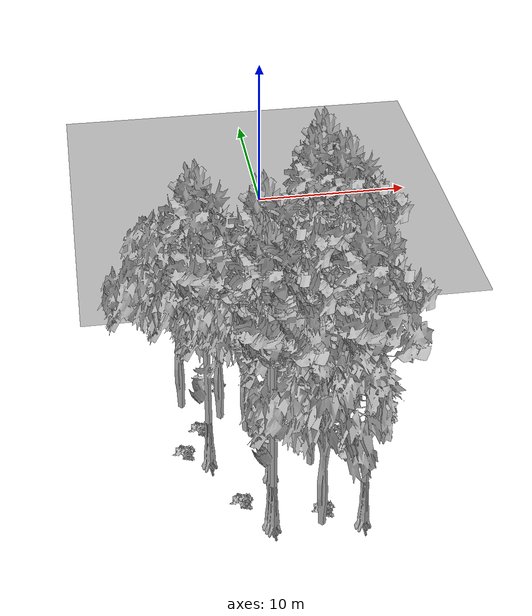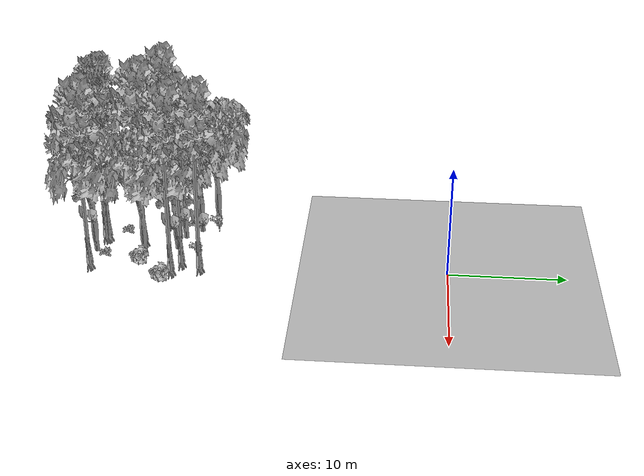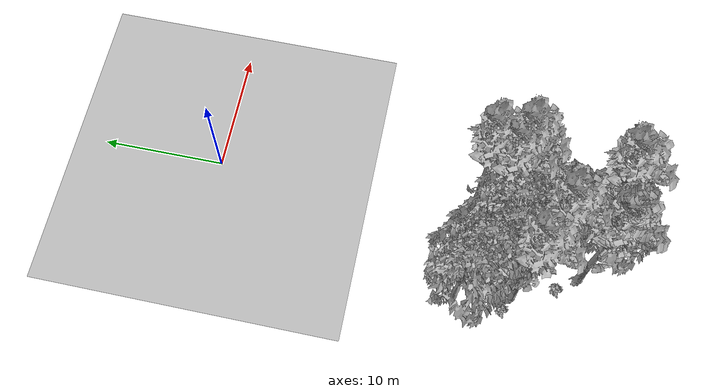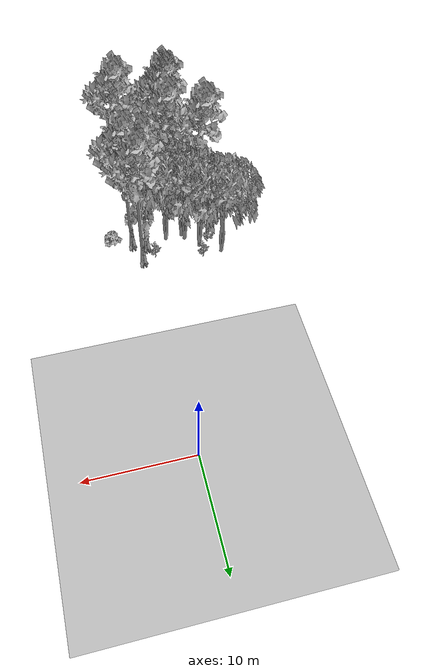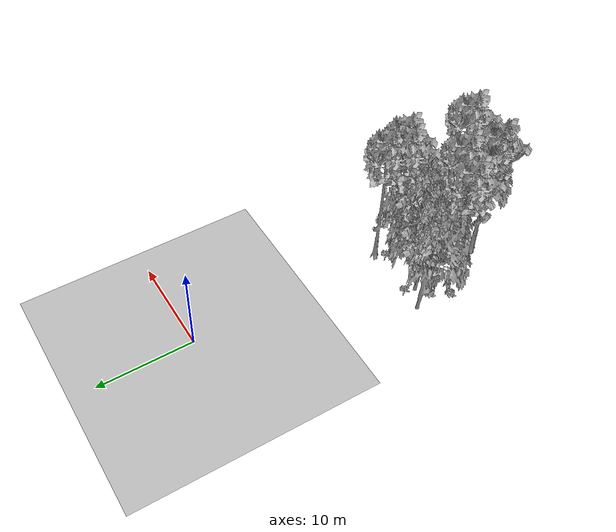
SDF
<sdf version="1.7">
 <world name="default">
  <model name="ground_plane">
   <static>1</static>
   <link name="link">
    <collision name="collision">
     <pose>-50 0 0 0 -0 0</pose>
     <geometry><plane><normal>0 0 1</normal><size>80 80</size></plane></geometry>
     <surface><contact><ode><min_depth>0.01</min_depth><max_vel>0</max_vel></ode></contact></surface>
    </collision>
    <visual name="grass">
     <cast_shadows>0</cast_shadows>
     <geometry>
      <mesh>
       <scale>0.46714285714285714 0.46714285714285714 0.1</scale>
       <uri>file://grass_plane/meshes/grass_plane.dae</uri>
      </mesh>
     </geometry>
    </visual>
   </link>
  </model>
  <model name="Tree 25">
   <static>1</static>
   <pose>-6.406606504228115 -25.172013029771758 0 1.57079 -0 0</pose>
   <link name="link">
    <collision name="collision">
     <geometry><mesh><scale>3.5 5 3.5</scale><uri>model://tree_9/meshes/tree_9.obj</uri></mesh></geometry>
    </collision>
    <visual name="visual">
     <geometry><mesh><scale>3.5 5 3.5</scale><uri>model://tree_9/meshes/tree_9.obj</uri></mesh></geometry>
    </visual>
   </link>
  </model>
  <model name="Tree 146">
   <static>1</static>
   <pose>-3.415306972874852 -26.652395711278096 0 1.57079 -0 0</pose>
   <link name="link">
    <collision name="collision">
     <geometry><mesh><scale>3.5 5 3.5</scale><uri>model://tree_9/meshes/tree_9.obj</uri></mesh></geometry>
    </collision>
    <visual name="visual">
     <geometry><mesh><scale>3.5 5 3.5</scale><uri>model://tree_9/meshes/tree_9.obj</uri></mesh></geometry>
    </visual>
   </link>
  </model>
  <model name="Tree 194">
   <static>1</static>
   <pose>-3.8651162942193125 -30.237707983013618 0 1.57079 -0 0</pose>
   <link name="link">
    <collision name="collision">
     <geometry><mesh><scale>3.5 5 3.5</scale><uri>model://tree_9/meshes/tree_9.obj</uri></mesh></geometry>
    </collision>
    <visual name="visual">
     <geometry><mesh><scale>3.5 5 3.5</scale><uri>model://tree_9/meshes/tree_9.obj</uri></mesh></geometry>
    </visual>
   </link>
  </model>
  <model name="Tree 242">
   <static>1</static>
   <pose>-5.527559291432475 -21.844891148401835 0 1.57079 -0 0</pose>
   <link name="link">
    <collision name="collision">
     <geometry><mesh><scale>3.5 5 3.5</scale><uri>model://tree_2/meshes/tree_2.obj</uri></mesh></geometry>
    </collision>
    <visual name="visual">
     <geometry><mesh><scale>3.5 5 3.5</scale><uri>model://tree_2/meshes/tree_2.obj</uri></mesh></geometry>
    </visual>
   </link>
  </model>
  <model name="Tree 274">
   <static>1</static>
   <pose>1.1209127751604981 -23.413446345264237 0 1.57079 -0 0</pose>
   <link name="link">
    <collision name="collision">
     <geometry><mesh><scale>3.5 5 3.5</scale><uri>model://tree_9/meshes/tree_9.obj</uri></mesh></geometry>
    </collision>
    <visual name="visual">
     <geometry><mesh><scale>3.5 5 3.5</scale><uri>model://tree_9/meshes/tree_9.obj</uri></mesh></geometry>
    </visual>
   </link>
  </model>
  <model name="Tree 282">
   <static>1</static>
   <pose>0.4440624566229445 -21.0705116856439 0 1.57079 -0 0</pose>
   <link name="link">
    <collision name="collision">
     <geometry><mesh><scale>3.5 5 3.5</scale><uri>model://tree_9/meshes/tree_9.obj</uri></mesh></geometry>
    </collision>
    <visual name="visual">
     <geometry><mesh><scale>3.5 5 3.5</scale><uri>model://tree_9/meshes/tree_9.obj</uri></mesh></geometry>
    </visual>
   </link>
  </model>
  <model name="Tree 320">
   <static>1</static>
   <pose>-4.072652148882341 -23.59673025360162 0 1.57079 -0 0</pose>
   <link name="link">
    <collision name="collision">
     <geometry><mesh><scale>3.5 5 3.5</scale><uri>model://tree_2/meshes/tree_2.obj</uri></mesh></geometry>
    </collision>
    <visual name="visual">
     <geometry><mesh><scale>3.5 5 3.5</scale><uri>model://tree_2/meshes/tree_2.obj</uri></mesh></geometry>
    </visual>
   </link>
  </model>
  <model name="Tree 345">
   <static>1</static>
   <pose>0.5856371112366929 -30.552232135844193 0 1.57079 -0 0</pose>
   <link name="link">
    <collision name="collision">
     <geometry><mesh><scale>3.5 5 3.5</scale><uri>model://tree_9/meshes/tree_9.obj</uri></mesh></geometry>
    </collision>
    <visual name="visual">
     <geometry><mesh><scale>3.5 5 3.5</scale><uri>model://tree_9/meshes/tree_9.obj</uri></mesh></geometry>
    </visual>
   </link>
  </model>
  <model name="Tree 349">
   <static>1</static>
   <pose>-0.21997610742118923 -22.76698647543779 0 1.57079 -0 0</pose>
   <link name="link">
    <collision name="collision">
     <geometry><mesh><scale>3.5 5 3.5</scale><uri>model://tree_9/meshes/tree_9.obj</uri></mesh></geometry>
    </collision>
    <visual name="visual">
     <geometry><mesh><scale>3.5 5 3.5</scale><uri>model://tree_9/meshes/tree_9.obj</uri></mesh></geometry>
    </visual>
   </link>
  </model>
  <model name="Tree 357">
   <static>1</static>
   <pose>-3.949448335242778 -29.994151914171177 0 1.57079 -0 0</pose>
   <link name="link">
    <collision name="collision">
     <geometry><mesh><scale>3.5 5 3.5</scale><uri>model://tree_9/meshes/tree_9.obj</uri></mesh></geometry>
    </collision>
    <visual name="visual">
     <geometry><mesh><scale>3.5 5 3.5</scale><uri>model://tree_9/meshes/tree_9.obj</uri></mesh></geometry>
    </visual>
   </link>
  </model>
  <model name="Tree 364">
   <static>1</static>
   <pose>-1.3547042843078714 -26.15953317688526 0 1.57079 -0 0</pose>
   <link name="link">
    <collision name="collision">
     <geometry><mesh><scale>3.5 5 3.5</scale><uri>model://tree_2/meshes/tree_2.obj</uri></mesh></geometry>
    </collision>
    <visual name="visual">
     <geometry><mesh><scale>3.5 5 3.5</scale><uri>model://tree_2/meshes/tree_2.obj</uri></mesh></geometry>
    </visual>
   </link>
  </model>
  <model name="Tree 408">
   <static>1</static>
   <pose>-7.503837962871096 -20.651484785930975 0 1.57079 -0 0</pose>
   <link name="link">
    <collision name="collision">
     <geometry><mesh><scale>3.5 5 3.5</scale><uri>model://tree_2/meshes/tree_2.obj</uri></mesh></geometry>
    </collision>
    <visual name="visual">
     <geometry><mesh><scale>3.5 5 3.5</scale><uri>model://tree_2/meshes/tree_2.obj</uri></mesh></geometry>
    </visual>
   </link>
  </model>
  <model name="Tree 416">
   <static>1</static>
   <pose>-4.294709970258559 -23.08722196879846 0 1.57079 -0 0</pose>
   <link name="link">
    <collision name="collision">
     <geometry><mesh><scale>3.5 5 3.5</scale><uri>model://tree_2/meshes/tree_2.obj</uri></mesh></geometry>
    </collision>
    <visual name="visual">
     <geometry><mesh><scale>3.5 5 3.5</scale><uri>model://tree_2/meshes/tree_2.obj</uri></mesh></geometry>
    </visual>
   </link>
  </model>
  <model name="Tree 418">
   <static>1</static>
   <pose>-1.5561266736327823 -30.46486011519958 0 1.57079 -0 0</pose>
   <link name="link">
    <collision name="collision">
     <geometry><mesh><scale>3.5 5 3.5</scale><uri>model://tree_2/meshes/tree_2.obj</uri></mesh></geometry>
    </collision>
    <visual name="visual">
     <geometry><mesh><scale>3.5 5 3.5</scale><uri>model://tree_2/meshes/tree_2.obj</uri></mesh></geometry>
    </visual>
   </link>
  </model>
  <model name="Tree 474">
   <static>1</static>
   <pose>-2.4367355642115527 -23.492110118265977 0 1.57079 -0 0</pose>
   <link name="link">
    <collision name="collision">
     <geometry><mesh><scale>3.5 5 3.5</scale><uri>model://tree_2/meshes/tree_2.obj</uri></mesh></geometry>
    </collision>
    <visual name="visual">
     <geometry><mesh><scale>3.5 5 3.5</scale><uri>model://tree_2/meshes/tree_2.obj</uri></mesh></geometry>
    </visual>
   </link>
  </model>
  <model name="Bush 306">
   <static>1</static>
   <pose>-5.465265792318284 -20.32184549145593 0 1.57079 -0 0</pose>
   <link name="link">
    <collision name="collision">
     <geometry><mesh><scale>2 2 2</scale><uri>model://bush_5/meshes/bush_5.obj</uri></mesh></geometry>
     <surface><contact><collide_without_contact>false</collide_without_contact></contact></surface>
    </collision>
    <visual name="visual">
     <geometry><mesh><scale>2 2 2</scale><uri>model://bush_5/meshes/bush_5.obj</uri></mesh></geometry>
    </visual>
   </link>
  </model>
  <model name="Bush 331">
   <static>1</static>
   <pose>-7.643012447672959 -24.548801588997733 0 1.57079 -0 0</pose>
   <link name="link">
    <collision name="collision">
     <geometry><mesh><scale>2 2 2</scale><uri>model://bush_2/meshes/bush_2.obj</uri></mesh></geometry>
     <surface><contact><collide_without_contact>false</collide_without_contact></contact></surface>
    </collision>
    <visual name="visual">
     <geometry><mesh><scale>2 2 2</scale><uri>model://bush_2/meshes/bush_2.obj</uri></mesh></geometry>
    </visual>
   </link>
  </model>
  <model name="Bush 362">
   <static>1</static>
   <pose>0.5768921959022038 -26.331036598417874 0 1.57079 -0 0</pose>
   <link name="link">
    <collision name="collision">
     <geometry><mesh><scale>2 2 2</scale><uri>model://bush_1/meshes/bush_1.obj</uri></mesh></geometry>
     <surface><contact><collide_without_contact>false</collide_without_contact></contact></surface>
    </collision>
    <visual name="visual">
     <geometry><mesh><scale>2 2 2</scale><uri>model://bush_1/meshes/bush_1.obj</uri></mesh></geometry>
    </visual>
   </link>
  </model>
  <model name="Bush 414">
   <static>1</static>
   <pose>-6.638374071675116 -22.825668719250032 0 1.57079 -0 0</pose>
   <link name="link">
    <collision name="collision">
     <geometry><mesh><scale>2 2 2</scale><uri>model://bush_2/meshes/bush_2.obj</uri></mesh></geometry>
     <surface><contact><collide_without_contact>false</collide_without_contact></contact></surface>
    </collision>
    <visual name="visual">
     <geometry><mesh><scale>2 2 2</scale><uri>model://bush_2/meshes/bush_2.obj</uri></mesh></geometry>
    </visual>
   </link>
  </model>
  <model name="Bush 448">
   <static>1</static>
   <pose>3.0424371387450293 -24.09466001935091 0 1.57079 -0 0</pose>
   <link name="link">
    <collision name="collision">
     <geometry><mesh><scale>2 2 2</scale><uri>model://bush_1/meshes/bush_1.obj</uri></mesh></geometry>
     <surface><contact><collide_without_contact>false</collide_without_contact></contact></surface>
    </collision>
    <visual name="visual">
     <geometry><mesh><scale>2 2 2</scale><uri>model://bush_1/meshes/bush_1.obj</uri></mesh></geometry>
    </visual>
   </link>
  </model>
  <model name="Bush 560">
   <static>1</static>
   <pose>-0.8277991991534535 -21.3470153355566 0 1.57079 -0 0</pose>
   <link name="link">
    <collision name="collision">
     <geometry><mesh><scale>2 2 2</scale><uri>model://bush_5/meshes/bush_5.obj</uri></mesh></geometry>
     <surface><contact><collide_without_contact>false</collide_without_contact></contact></surface>
    </collision>
    <visual name="visual">
     <geometry><mesh><scale>2 2 2</scale><uri>model://bush_5/meshes/bush_5.obj</uri></mesh></geometry>
    </visual>
   </link>
  </model>
  <model name="Bush 564">
   <static>1</static>
   <pose>-1.226556406827953 -29.669323359889106 0 1.57079 -0 0</pose>
   <link name="link">
    <collision name="collision">
     <geometry><mesh><scale>2 2 2</scale><uri>model://bush_2/meshes/bush_2.obj</uri></mesh></geometry>
     <surface><contact><collide_without_contact>false</collide_without_contact></contact></surface>
    </collision>
    <visual name="visual">
     <geometry><mesh><scale>2 2 2</scale><uri>model://bush_2/meshes/bush_2.obj</uri></mesh></geometry>
    </visual>
   </link>
  </model>
  <model name="Bush 620">
   <static>1</static>
   <pose>-5.167228006509866 -28.529958886411812 0 1.57079 -0 0</pose>
   <link name="link">
    <collision name="collision">
     <geometry><mesh><scale>2 2 2</scale><uri>model://bush_2/meshes/bush_2.obj</uri></mesh></geometry>
     <surface><contact><collide_without_contact>false</collide_without_contact></contact></surface>
    </collision>
    <visual name="visual">
     <geometry><mesh><scale>2 2 2</scale><uri>model://bush_2/meshes/bush_2.obj</uri></mesh></geometry>
    </visual>
   </link>
  </model>
 </world>
</sdf>
